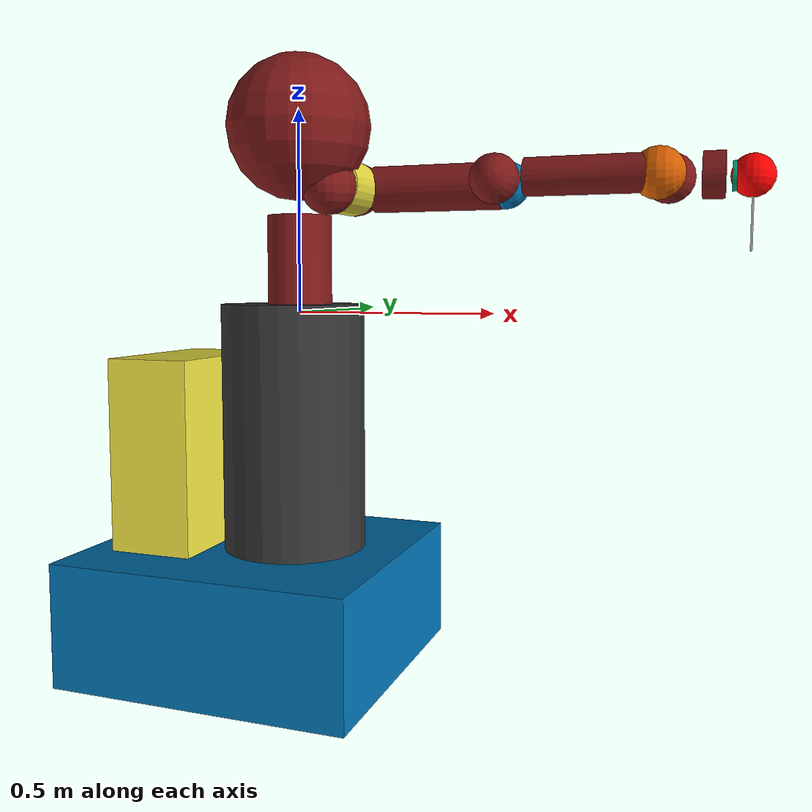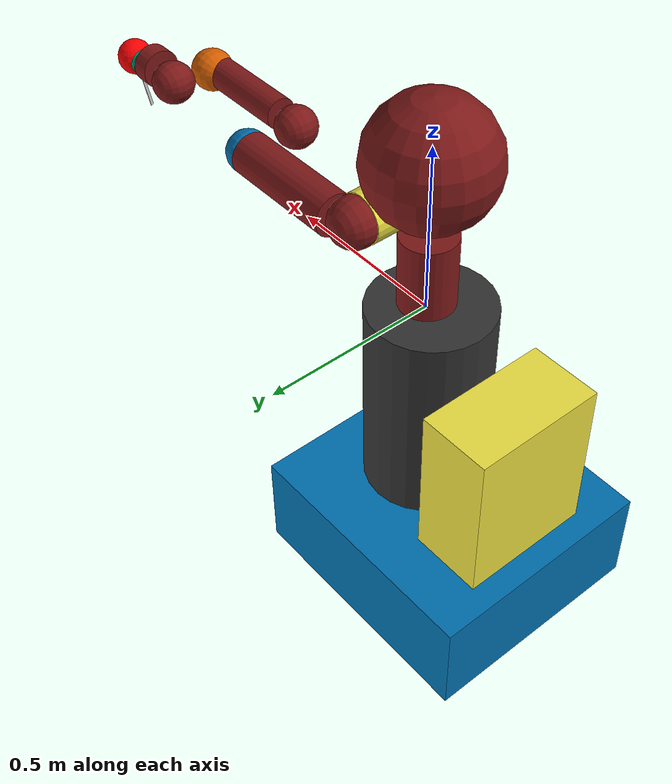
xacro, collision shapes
<?xml version="1.0" ?>
<robot name="sawyer" xmlns:xacro="http://www.ros.org/wiki/xacro">

  <xacro:arg name="gazebo" default="false"/>
  <xacro:arg name="pedestal" default="true"/>
  <xacro:arg name="static" default="true"/>
  <xacro:arg name="electric_gripper" default="false"/>
  <xacro:arg name="surgical_scalpel" default="true"/>
  <!-- Sawyer Base URDF -->
  <xacro:include filename="$(find Teleoperacion-VisionArtificial)/src/simulate/urdf/sawyer_base.urdf.xacro">
    <xacro:arg name="gazebo" value="${gazebo}"/>
    <xacro:arg name="pedestal" value="${pedestal}"/>
  </xacro:include>
  <xacro:if value="$(arg gazebo)">
  <xacro:include filename="$(find Teleoperacion-VisionArtificial)/src/simulate/urdf/sawyer_base.gazebo.xacro">
    <xacro:arg name="static" value="${static}"/>
    <xacro:arg name="pedestal" value="${pedestal}"/>
  </xacro:include>
  </xacro:if>

</robot>

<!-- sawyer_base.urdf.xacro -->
<robot name="sawyer" xmlns:xacro="http://www.ros.org/wiki/xacro">
  <xacro:arg name="gazebo" default="false"/>
  <xacro:arg name="pedestal" default="true"/>
  <material name="black">
    <color rgba="0 0 0 1"/>
  </material>
  <material name="darkgray">
    <color rgba=".2 .2 .2 1"/>
  </material>
  <material name="darkred">
    <color rgba=".5 .1 .1 1"/>
  </material>
  <material name="sawyer_red">
    <color rgba=".5 .1 .1 1"/>
  </material>
  <material name="sawyer_gray">
    <color rgba="0.75294 0.75294 0.75294 1"/>
  </material>
  <link name="base"/>
  <link name="torso">
    <visual>
      <origin rpy="0 0 0" xyz="0 0 0"/>
      <geometry>
        <box size="0.001 0.001 0.001"/>
      </geometry>
      <material name="darkgray">
        <color rgba=".2 .2 .2 1"/>
      </material>
    </visual>
<xacro:unless value="$(arg gazebo)">
    <inertial>
      <origin rpy="0 0 0" xyz="0.000000 0.000000 0.000000"/>
      <mass value="0.0001"/>
      <inertia ixx="1e-08" ixy="0" ixz="0" iyy="1e-08" iyz="0" izz="1e-08"/>
    </inertial>
</xacro:unless>
  </link>
<xacro:if value="$(arg pedestal)">
  <link name="pedestal">
    <visual>
      <origin rpy="1.57079632679 0 -1.57079632679" xyz="0.26 0.345 -0.91488"/>
      <geometry>
        <mesh filename="package://Teleoperacion-VisionArtificial/src/simulate/meshes/sawyer_pv/pedestal.DAE"/>
      </geometry>
      <material name="darkgray"/>
    </visual>
    <collision>
      <origin rpy="0 0 0" xyz="-0.02 0 -0.29"/>
      <geometry>
        <cylinder length="0.62" radius="0.18"/>
      </geometry>
    </collision>
    <inertial>
      <origin rpy="0 0 0" xyz="0 0 -0.5"/>
      <mass value="60.86397744"/>
      <inertia ixx="5.0635929" ixy="0.00103417" ixz="0.80199628" iyy="6.08689388" iyz="0.00105311" izz="4.96191932"/>
    </inertial>
  </link>
  <link name="controller_box">
    <collision>
      <origin rpy="0 0 0" xyz="-0.325 0 -0.38"/>
      <geometry>
        <box size="0.22 0.4 0.53"/>
      </geometry>
    </collision>
  </link>
  <joint name="controller_box_fixed" type="fixed">
    <origin rpy="0 0 0" xyz="0.0 0.0 0.0"/>
    <parent link="base"/>
    <child link="controller_box"/>
  </joint>
  <link name="pedestal_feet">
    <collision>
      <origin rpy="0 0 0" xyz="-0.1225 0 -0.758"/>
      <geometry>
        <box size="0.77 0.7 0.31"/>
      </geometry>
    </collision>
  </link>
  <joint name="pedestal_feet_fixed" type="fixed">
    <origin rpy="0 0 0" xyz="0.0 0.0 0.0"/>
    <parent link="base"/>
    <child link="pedestal_feet"/>
  </joint>
  <joint name="pedestal_fixed" type="fixed">
    <origin rpy="0 0 0" xyz="0.0 0.0 0.0"/>
    <parent link="base"/>
    <child link="pedestal"/>
  </joint>
</xacro:if>
  <joint name="right_arm_mount" type="fixed">
    <origin rpy="0 0 0" xyz="0.0 0.0 0.0"/>
    <parent link="base"/>
    <child link="right_arm_base_link"/>
  </joint>
  <joint name="torso_t0" type="fixed">
    <origin rpy="0 0 0" xyz="0 0 0"/>
    <parent link="base"/>
    <child link="torso"/>
  </joint>
  <link name="right_arm_base_link">
    <inertial>
      <origin rpy="0 0 0" xyz="-0.0006241 -2.8025E-05 0.065404"/>
      <mass value="2.0687"/>
      <inertia ixx="0.0067599" ixy="-4.2024E-05" ixz="-6.1904E-07" iyy="0.0067877" iyz="1.5888E-05" izz="0.0074031"/>
    </inertial>
    <visual>
      <origin rpy="0 0 0" xyz="0 0 0"/>
      <geometry>
        <mesh filename="package://Teleoperacion-VisionArtificial/src/simulate/meshes/sawyer_pv/base.DAE"/>
      </geometry>
      <material name="sawyer_red"/>
    </visual>
    <collision>
      <origin rpy="0 0 0" xyz="0 0 0.12"/>
      <geometry>
        <cylinder length="0.24" radius="0.08"/>
      </geometry>
    </collision>
  </link>
  <link name="right_l0">
    <inertial>
      <origin rpy="0 0 0" xyz="0.024366 0.010969 0.14363"/>
      <mass value="5.3213"/>
      <inertia ixx="0.053314" ixy="0.0047093" ixz="0.011734" iyy="0.057902" iyz="0.0080179" izz="0.023659"/>
    </inertial>
    <visual>
      <origin rpy="0 0 0" xyz="0 0 0"/>
      <geometry>
        <mesh filename="package://Teleoperacion-VisionArtificial/src/simulate/meshes/sawyer_mp3/l0.DAE"/>
      </geometry>
      <material name="sawyer_red"/>
    </visual>
    <collision>
      <origin rpy="0 0 0" xyz="0.08 0 0.23"/>
      <geometry>
        <sphere radius="0.07"/>
      </geometry>
    </collision>
  </link>
  <joint name="right_j0" type="revolute">
    <origin rpy="0 0 0" xyz="0 0 0.08"/>
    <parent link="right_arm_base_link"/>
    <child link="right_l0"/>
    <axis xyz="0 0 1"/>
    <limit effort="80.0" lower="-3.0503" upper="3.0503" velocity="1.74"/>
<xacro:if value="$(arg gazebo)">
    <dynamics damping="10.0" friction="5.0"/>
</xacro:if>
  </joint>
  <link name="head">
    <inertial>
      <origin rpy="0 0 0" xyz="0.0053207 -2.6549E-05 0.1021"/>
      <mass value="1.5795"/>
      <inertia ixx="0.011833" ixy="-4.4669E-06" ixz="4.9425E-05" iyy="0.0082709" iyz="4.2124E-07" izz="0.0049661"/>
    </inertial>
    <visual>
      <origin rpy="0 0 0" xyz="0 0 0"/>
      <geometry>
        <mesh filename="package://Teleoperacion-VisionArtificial/src/simulate/meshes/sawyer_pv/head.DAE"/>
      </geometry>
      <material name="sawyer_red"/>
    </visual>
    <collision>
      <origin rpy="0 0 0" xyz="0 0 0.08"/>
      <geometry>
        <sphere radius="0.18"/>
      </geometry>
    </collision>
  </link>
  <joint name="head_pan" type="revolute">
    <origin rpy="0 0 0" xyz="0 0 0.2965"/>
    <parent link="right_l0"/>
    <child link="head"/>
    <axis xyz="0 0 1"/>
    <limit effort="8" lower="-5.0952" upper="0.9064" velocity="1.8"/>
<xacro:if value="$(arg gazebo)">
    <dynamics damping="1.0" friction="0.5"/>
</xacro:if>
  </joint>
  <link name="right_torso_itb">
<xacro:unless value="$(arg gazebo)">
    <inertial>
      <origin rpy="0 0 0" xyz="0.000000 0.000000 0.000000"/>
      <mass value="0.0001"/>
      <inertia ixx="1e-08" ixy="0" ixz="0" iyy="1e-08" iyz="0" izz="1e-08"/>
    </inertial>
</xacro:unless>
  </link>
  <joint name="right_torso_itb" type="fixed">
    <origin rpy="0 -1.57079632679 0" xyz="-.055 0 .22"/>
    <parent link="right_l0"/>
    <child link="right_torso_itb"/>
    <axis xyz="0 0 1"/>
  </joint>
  <link name="right_l1">
    <inertial>
      <origin rpy="0 0 0" xyz="-0.0030849 -0.026811 0.092521"/>
      <mass value="4.505"/>
      <inertia ixx="0.022398" ixy="-0.00023986" ixz="-0.00029362" iyy="0.014613" iyz="-0.0060875" izz="0.017295"/>
    </inertial>
    <visual>
      <origin rpy="0 0 0" xyz="0 0 0"/>
      <geometry>
        <mesh filename="package://Teleoperacion-VisionArtificial/src/simulate/meshes/sawyer_mp3/l1.DAE"/>
      </geometry>
      <material name="sawyer_red"/>
    </visual>
    <collision>
      <origin rpy="0 0 0" xyz="0 0 0.1225"/>
      <geometry>
        <sphere radius="0.07"/>
      </geometry>
    </collision>
  </link>
  <joint name="right_j1" type="revolute">
    <origin rpy="-1.57079632679 1.57079632679 0" xyz="0.081 0.05 0.237"/>
    <parent link="right_l0"/>
    <child link="right_l1"/>
    <axis xyz="0 0 1"/>
    <limit effort="80.0" lower="-3.8095" upper="2.2736" velocity="1.328"/>
<xacro:if value="$(arg gazebo)">
    <dynamics damping="5.0" friction="2.0"/>
</xacro:if>
  </joint>
  <link name="right_l2">
    <inertial>
      <origin rpy="0 0 0" xyz="-0.00016044 -0.014967 0.13582"/>
      <mass value="1.745"/>
      <inertia ixx="0.025506" ixy="4.4101E-06" ixz="1.4955E-05" iyy="0.0253" iyz="-0.0033204" izz="0.0034179"/>
    </inertial>
    <visual>
      <origin rpy="0 0 0" xyz="0 0 0"/>
      <geometry>
        <mesh filename="package://Teleoperacion-VisionArtificial/src/simulate/meshes/sawyer_pv/l2.DAE"/>
      </geometry>
      <material name="sawyer_red"/>
    </visual>
    <collision>
      <origin rpy="0 0 0" xyz="0 0 0.08"/>
      <geometry>
        <cylinder length="0.34" radius="0.06"/>
      </geometry>
    </collision>
  </link>
  <joint name="right_j2" type="revolute">
    <origin rpy="1.57079632679 0 0" xyz="0 -0.14 0.1425"/>
    <parent link="right_l1"/>
    <child link="right_l2"/>
    <axis xyz="0 0 1"/>
    <limit effort="40.0" lower="-3.0426" upper="3.0426" velocity="1.957"/>
<xacro:if value="$(arg gazebo)">
    <dynamics damping="5.0" friction="2.0"/>
</xacro:if>
  </joint>
  <link name="right_l3">
    <inertial>
      <origin rpy="0 0 0" xyz="-0.0048135 -0.0281 -0.084154"/>
      <mass value="2.5097"/>
      <inertia ixx="0.01016" ixy="-9.7452E-06" ixz="0.00026624" iyy="0.0065685" iyz="0.0030316" izz="0.0069078"/>
    </inertial>
    <visual>
      <origin rpy="0 0 0" xyz="0 0 0"/>
      <geometry>
        <mesh filename="package://Teleoperacion-VisionArtificial/src/simulate/meshes/sawyer_pv/l3.DAE"/>
      </geometry>
      <material name="sawyer_red"/>
    </visual>
    <collision>
      <origin rpy="0 0 0" xyz="0 -0.01 -0.12"/>
      <geometry>
        <sphere radius="0.06"/>
      </geometry>
    </collision>
  </link>
  <joint name="right_j3" type="revolute">
    <origin rpy="-1.57079632679 0 0" xyz="0 -0.042 0.26"/>
    <parent link="right_l2"/>
    <child link="right_l3"/>
    <axis xyz="0 0 1"/>
    <limit effort="40.0" lower="-3.0439" upper="3.0439" velocity="1.957"/>
 <xacro:if value="$(arg gazebo)">
    <dynamics damping="1.0" friction="0.5"/>
</xacro:if>
  </joint>
  <link name="right_l4">
    <inertial>
      <origin rpy="0 0 0" xyz="-0.0018844 0.0069001 0.1341"/>
      <mass value="1.1136"/>
      <inertia ixx="0.013557" ixy="1.8109E-05" ixz="0.00013523" iyy="0.013555" iyz="0.0010561" izz="0.0013658"/>
    </inertial>
    <visual>
      <origin rpy="0 0 0" xyz="0 0 0"/>
      <geometry>
        <mesh filename="package://Teleoperacion-VisionArtificial/src/simulate/meshes/sawyer_pv/l4.DAE"/>
      </geometry>
      <material name="sawyer_red"/>
    </visual>
    <collision>
      <origin rpy="0 0 0" xyz="0 0 0.11"/>
      <geometry>
        <cylinder length="0.30" radius="0.045"/>
      </geometry>
    </collision>
  </link>
  <joint name="right_j4" type="revolute">
    <origin rpy="1.57079632679 0 0" xyz="0 -0.125 -0.1265"/>
    <parent link="right_l3"/>
    <child link="right_l4"/>
    <axis xyz="0 0 1"/>
    <limit effort="9.0" lower="-2.9761" upper="2.9761" velocity="3.485"/>
<xacro:if value="$(arg gazebo)">
    <dynamics damping="2.0" friction="1.0"/>
</xacro:if>
  </joint>
  <link name="right_arm_itb">
<xacro:unless value="$(arg gazebo)">
    <inertial>
      <origin rpy="0 0 0" xyz="0.000000 0.000000 0.000000"/>
      <mass value="0.0001"/>
      <inertia ixx="1e-08" ixy="0" ixz="0" iyy="1e-08" iyz="0" izz="1e-08"/>
    </inertial>
</xacro:unless>
  </link>
  <joint name="right_arm_itb" type="fixed">
    <origin rpy="0 -1.57079632679 0" xyz="-.055 0 .075"/>
    <parent link="right_l4"/>
    <child link="right_arm_itb"/>
    <axis xyz="0 0 1"/>
  </joint>
  <link name="right_l5">
    <inertial>
      <origin rpy="0 0 0" xyz="0.0061133 -0.023697 0.076416"/>
      <mass value="1.5625"/>
      <inertia ixx="0.0047328" ixy="0.00011526" ixz="4.6269E-05" iyy="0.0029676" iyz="-0.0011557" izz="0.0031762"/>
    </inertial>
    <visual>
      <origin rpy="0 0 0" xyz="0 0 0"/>
      <geometry>
        <mesh filename="package://Teleoperacion-VisionArtificial/src/simulate/meshes/sawyer_pv/l5.DAE"/>
      </geometry>
      <material name="sawyer_red"/>
    </visual>
    <collision>
      <origin rpy="0 0 0" xyz="0 0 0.1"/>
      <geometry>
        <sphere radius="0.06"/>
      </geometry>
    </collision>
  </link>
  <joint name="right_j5" type="revolute">
    <origin rpy="-1.57079632679 0 0" xyz="0 0.031 0.275"/>
    <parent link="right_l4"/>
    <child link="right_l5"/>
    <axis xyz="0 0 1"/>
    <limit effort="9.0" lower="-2.9761" upper="2.9761" velocity="3.485"/>
<xacro:if value="$(arg gazebo)">
    <dynamics damping="1.0" friction="0.5"/>
</xacro:if>
  </joint>
  <link name="right_hand_camera"/>
  <joint name="right_hand_camera" type="fixed">
    <origin rpy="0 1.57079632679 0" xyz="0.039552 -0.033 0.0695"/>
    <parent link="right_l5"/>
    <child link="right_hand_camera"/>
    <axis xyz="0 0 0"/>
  </joint>
  <link name="right_wrist"/>
  <joint name="right_wrist" type="fixed">
    <origin rpy="1.57079632679 0 0" xyz="0 0 0.10541"/>
    <parent link="right_l5"/>
    <child link="right_wrist"/>
    <axis xyz="0 0 0"/>
  </joint>
  <link name="right_l6">
    <inertial>
      <origin rpy="0 0 0" xyz="-8.0726E-06 0.0085838 -0.0049566"/>
      <mass value="0.3292"/>
      <inertia ixx="0.00031105" ixy="1.4771E-06" ixz="-3.7074E-07" iyy="0.00021549" iyz="-8.4533E-06" izz="0.00035976"/>
    </inertial>
    <visual>
      <origin rpy="0 0 0" xyz="0 0 0"/>
      <geometry>
        <mesh filename="package://Teleoperacion-VisionArtificial/src/simulate/meshes/sawyer_mp1/l6.DAE"/>
      </geometry>
      <material name="sawyer_red"/>
    </visual>
    <collision>
      <origin rpy="0 0 0" xyz="0 0.015 -0.01"/>
      <geometry>
        <cylinder length="0.05" radius="0.055"/>
      </geometry>
    </collision>
  </link>
  <joint name="right_j6" type="revolute">
    <origin rpy="-1.57079632679 -0.17453 3.1416" xyz="0 -0.11 0.1053"/>
    <parent link="right_l5"/>
    <child link="right_l6"/>
    <axis xyz="0 0 1"/>
<xacro:if value="$(arg gazebo)">
    <limit effort="9.0" lower="-3.14" upper="3.14" velocity="4.545"/>
    <dynamics damping="1.0" friction="0.5"/>
</xacro:if>
<xacro:unless value="$(arg gazebo)">
    <limit effort="9.0" lower="-4.7124" upper="4.7124" velocity="4.545"/>
</xacro:unless>
  </joint>
  <link name="right_hand">
    <collision>
      <origin rpy="0 0 0" xyz="0 0 0.02"/>
      <geometry>
        <cylinder length="0.03" radius="0.035"/>
      </geometry>
    </collision>
<xacro:if value="$(arg gazebo)">
    <inertial>
      <origin rpy="0 0 0" xyz="0 0.1 0"/>
      <mass value="0.01"/>
      <inertia ixx="0.01" ixy="0.01" ixz="0.01" iyy="0.01" iyz="0.01" izz="0.01"/>
  </inertial>
</xacro:if>
<xacro:unless value="$(arg gazebo)">
    <inertial>
      <origin rpy="0 0 0" xyz="1.0E-08 1.0E-08 1.0E-08"/>
      <mass value="1.0E-08"/>
      <inertia ixx="1.0E-08" ixy="1.0E-08" ixz="1.0E-08" iyy="1.0E-08" iyz="1.0E-08" izz="1.0E-08"/>
    </inertial>
</xacro:unless>
  </link>
  <joint name="right_hand" type="fixed">
    <origin rpy="0 0 1.570796" xyz="0 0 0.0245"/>
    <axis xyz="0 0 1"/>
    <parent link="right_l6"/>
    <child link="right_hand"/>
  </joint>
  <link name="right_l1_2">
<xacro:unless value="$(arg gazebo)">
    <inertial>
      <origin rpy="0 0 0" xyz="1.0E-08 1.0E-08 1.0E-08"/>
      <mass value="1.0E-08"/>
      <inertia ixx="1.0E-08" ixy="1.0E-08" ixz="1.0E-08" iyy="1.0E-08" iyz="1.0E-08" izz="1.0E-08"/>
    </inertial>
</xacro:unless>
    <collision>
      <origin rpy="0 0 0" xyz="0 0 0.035"/>
      <geometry>
        <cylinder length="0.14" radius="0.07"/>
      </geometry>
    </collision>
  </link>
  <joint name="right_j1_2" type="fixed">
    <origin rpy="0 0 0" xyz="0 0 0"/>
    <parent link="right_l1"/>
    <child link="right_l1_2"/>
    <axis xyz="0 0 1"/>
  </joint>
  <link name="right_l2_2">
<xacro:unless value="$(arg gazebo)">
    <inertial>
      <origin rpy="0 0 0" xyz="1.0E-08 1.0E-08 1.0E-08"/>
      <mass value="1.0E-08"/>
      <inertia ixx="1.0E-08" ixy="1.0E-08" ixz="1.0E-08" iyy="1.0E-08" iyz="1.0E-08" izz="1.0E-08"/>
    </inertial>
</xacro:unless>
    <collision>
      <origin rpy="0 0 0" xyz="0 0 0.26"/>
      <geometry>
        <sphere radius="0.06"/>
      </geometry>
    </collision>
  </link>
  <joint name="right_j2_2" type="fixed">
    <origin rpy="0 0 0" xyz="0 0 0"/>
    <parent link="right_l2"/>
    <child link="right_l2_2"/>
    <axis xyz="0 0 1"/>
  </joint>
  <link name="right_l4_2">
<xacro:unless value="$(arg gazebo)">
    <inertial>
      <origin rpy="0 0 0" xyz="1.0E-08 1.0E-08 1.0E-08"/>
      <mass value="1.0E-08"/>
      <inertia ixx="1.0E-08" ixy="1.0E-08" ixz="1.0E-08" iyy="1.0E-08" iyz="1.0E-08" izz="1.0E-08"/>
    </inertial>
</xacro:unless>
    <collision>
      <origin rpy="0 0 0" xyz="0 0.01 0.26"/>
      <geometry>
        <sphere radius="0.06"/>
      </geometry>
    </collision>
  </link>
  <joint name="right_j4_2" type="fixed">
    <origin rpy="0 0 0" xyz="0 0 0"/>
    <parent link="right_l4"/>
    <child link="right_l4_2"/>
    <axis xyz="0 0 1"/>
  </joint>
  <link name="screen">
    <visual>
      <origin rpy="0 0 0" xyz="0 0 0"/>
      <geometry>
        <box size="0.24 0.14 0.002"/>
      </geometry>
      <material name="darkgray"/>
    </visual>
    <collision>
      <origin rpy="0 0 0" xyz="0 0 0"/>
      <geometry>
        <sphere radius="0.001"/>
      </geometry>
    </collision>
<xacro:unless value="$(arg gazebo)">
    <inertial>
      <origin rpy="0 0 0" xyz="0 0 0"/>
      <mass value="0.0001"/>
      <inertia ixx="1e-08" ixy="0" ixz="0" iyy="1e-08" iyz="0" izz="1e-08"/>
    </inertial>
</xacro:unless>
  </link>
  <joint name="display_joint" type="fixed">
    <origin rpy="1.57079632679 0 1.57079632679" xyz="0.03 0.0 0.105"/>
    <parent link="head"/>
    <child link="screen"/>
  </joint>
  <link name="head_camera"/>
  <joint name="head_camera" type="fixed">
    <origin rpy="-2.1293 0 -1.57079632679" xyz="0.0228027 0 0.216572"/>
    <parent link="head"/>
    <child link="head_camera"/>
    <axis xyz="0 0 0"/>
  </joint>

 <!-- Definir la esfera entre la base y el bisturí, representando la mano -->
  <link name="right_hand_sphere">
    <visual>
      <origin rpy="0 0 0" xyz="0 0 0"/> <!-- Colocar la esfera justo entre la mano y el bisturí -->
      <geometry>
        <sphere radius="0.05"/> <!-- Esfera de 5 cm de radio -->
      </geometry>
      <material name="sawyer_red"> <!-- Usamos el color rojo metálico del robot Sawyer -->
        <color rgba="1 0 0 1"/>
      </material>
    </visual>
    <collision>
      <origin rpy="0 0 0" xyz="0 0 0"/>
      <geometry>
        <sphere radius="0.05"/>
      </geometry>
    </collision>
    <inertial>
      <origin rpy="0 0 0" xyz="0 0 0"/>
      <mass value="0.2"/> <!-- Asignamos una masa ligera a la esfera -->
      <inertia ixx="1e-03" ixy="0" ixz="0" iyy="1e-03" iyz="0" izz="1e-03"/>
    </inertial>
  </link>

  <!-- Joint entre la mano y la esfera -->
  <joint name="right_hand_to_sphere_joint" type="fixed">
    <origin rpy="1.573 0.3 3.14" xyz="0 0 0.05"/> <!-- Colocamos la esfera a 5 cm de la mano -->
    <parent link="right_hand"/> <!-- La esfera está conectada a la mano -->
    <child link="right_hand_sphere"/> <!-- La esfera como hijo -->
  </joint>

  <!-- Definición del bisturí, ahora hijo de la esfera en lugar de la mano -->
 <link name="right_scalpel_base">
    <!-- Primera parte del bisturí (10 cm, color plateado) -->
    <visual>
      <origin rpy="0 0 0" xyz="0 0 0.05"/> <!-- Colocamos esta parte de 10 cm desde la base -->
      <geometry>
        <!-- Representar la primera parte de la hoja del bisturí con un prisma delgado -->
        <box size="0.01 0.002 0.10"/> <!-- Hoja de bisturí (10mm ancho, 0.2mm grosor, 100mm largo) -->
      </geometry>
      <material name="silver">
        <color rgba="0.8 0.8 0.8 1"/> <!-- Color metálico plateado -->
      </material>
    </visual>

    <!-- Segunda parte del bisturí (5 cm, color verde) -->
    <visual>
      <origin rpy="0 0 0" xyz="0 0 0.125"/> <!-- Colocamos esta parte de 5 cm justo después de la primera -->
      <geometry>
        <!-- Representar la segunda parte de la hoja del bisturí con un prisma delgado -->
        <box size="0.01 0.002 0.05"/> <!-- Hoja de bisturí (10mm ancho, 0.2mm grosor, 50mm largo) -->
      </geometry>
      <material name="green">
        <color rgba="0 1 0 1"/> <!-- Color verde para la punta del bisturí -->
      </material>
    </visual>

    <collision>
      <origin rpy="0 0 0" xyz="0 0 0.10"/>
      <geometry>
        <!-- Geometría de colisión para toda la hoja del bisturí (15 cm) -->
        <box size="0.01 0.002 0.15"/>
      </geometry>
    </collision>
    <inertial>
      <!-- Parámetros inerciales de un bisturí, asumiendo que pesa unos 20 gramos -->
      <origin rpy="0 0 0" xyz="0 0 0.075"/> <!-- Centro de masa ajustado -->
      <mass value="0.02"/> <!-- 20 gramos -->
      <inertia ixx="1e-06" ixy="0" ixz="0" iyy="1e-06" iyz="0" izz="1e-06"/>
    </inertial>
  </link>

  <!-- Joint entre la esfera y el bisturí -->
  <joint name="right_sphere_to_scalpel_joint" type="fixed">
    <origin rpy="0 0 0" xyz="0 0 0"/> <!-- Colocar el bisturí encima de la esfera -->
    <parent link="right_hand_sphere"/> <!-- La esfera es el padre del bisturí -->
    <child link="right_scalpel_base"/> <!-- El bisturí es el hijo -->
  </joint>

</robot>
